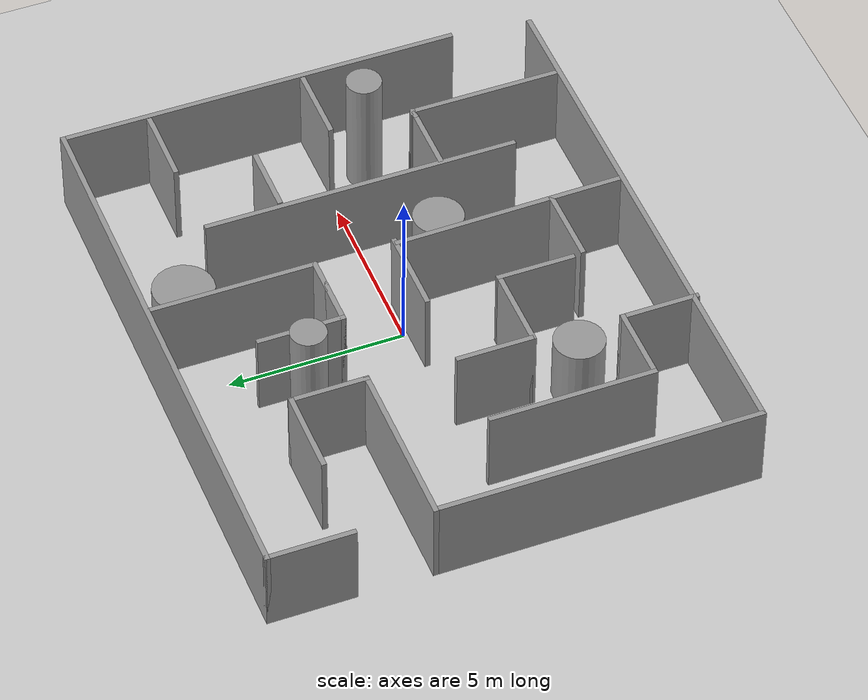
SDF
<sdf version="1.7">
 <world name="default">
  <model name="ground_plane">
   <static>1</static>
   <link name="link">
    <collision name="collision">
     <geometry><plane><normal>0 0 1</normal><size>100 100</size></plane></geometry>
     <surface>
      <contact><collide_bitmask>65535</collide_bitmask></contact>
      <friction><ode><mu>100</mu><mu2>50</mu2></ode></friction>
     </surface>
    </collision>
    <visual name="visual">
     <cast_shadows>0</cast_shadows>
     <geometry><plane><normal>0 0 1</normal><size>100 100</size></plane></geometry>
     <material>
      <script><uri>file://media/materials/scripts/gazebo.material</uri><name>Gazebo/Grey</name></script>
     </material>
    </visual>
   </link>
  </model>
  <light name="sun" type="directional">
   <pose>0 0 10 0 -0 0</pose>
   <diffuse>0.8 0.8 0.8 1</diffuse>
   <specular>0.2 0.2 0.2 1</specular>
   <attenuation>
    <range>1000</range>
    <constant>0.9</constant>
    <linear>0.01</linear>
    <quadratic>0.001</quadratic>
   </attenuation>
   <direction>-0.5 0.1 -0.9</direction>
   <spot><inner_angle>0</inner_angle><outer_angle>0</outer_angle><falloff>0</falloff></spot>
  </light>
  <gravity>0 0 -9.8</gravity>
  <magnetic_field>6e-06 2.3e-05 -4.2e-05</magnetic_field>
  <atmosphere type="adiabatic"/>
  <physics type="ode">
   <max_step_size>0.001</max_step_size>
   <real_time_factor>1</real_time_factor>
   <real_time_update_rate>1000</real_time_update_rate>
  </physics>
  <scene><ambient>0.4 0.4 0.4 1</ambient><background>0.7 0.7 0.7 1</background><shadows>1</shadows></scene>
  <spherical_coordinates>
   <surface_model>EARTH_WGS84</surface_model>
   <latitude_deg>0</latitude_deg>
   <longitude_deg>0</longitude_deg>
   <elevation>0</elevation>
   <heading_deg>0</heading_deg>
  </spherical_coordinates>
  <model name="trial_maze_1">
   <pose>-0.017353 -0.028141 0 0 -0 0</pose>
   <link name="Wall_20">
    <collision name="Wall_20_Collision">
     <geometry><box><size>2.5 0.15 2.5</size></box></geometry>
     <pose>0 0 1.25 0 -0 0</pose>
    </collision>
    <visual name="Wall_20_Visual">
     <pose>0 0 1.25 0 -0 0</pose>
     <geometry><box><size>2.5 0.15 2.5</size></box></geometry>
     <material>
      <script><uri>file://media/materials/scripts/gazebo.material</uri><name>Gazebo/Grey</name></script>
      <ambient>1 1 1 1</ambient>
     </material>
     <meta><layer>0</layer></meta>
    </visual>
    <pose>-8.02592 5.68619 0 0 -0 1.5708</pose>
   </link>
   <link name="Wall_21">
    <collision name="Wall_21_Collision">
     <geometry><box><size>16.25 0.15 2.5</size></box></geometry>
     <pose>0 0 1.25 0 -0 0</pose>
    </collision>
    <visual name="Wall_21_Visual">
     <pose>0 0 1.25 0 -0 0</pose>
     <geometry><box><size>16.25 0.15 2.5</size></box></geometry>
     <material>
      <script><uri>file://media/materials/scripts/gazebo.material</uri><name>Gazebo/Grey</name></script>
      <ambient>1 1 1 1</ambient>
     </material>
     <meta><layer>0</layer></meta>
    </visual>
    <pose>0.024078 6.86119 0 0 -0 0</pose>
   </link>
   <link name="Wall_22">
    <collision name="Wall_22_Collision">
     <geometry><box><size>11.5 0.15 2.5</size></box></geometry>
     <pose>0 0 1.25 0 -0 0</pose>
    </collision>
    <visual name="Wall_22_Visual">
     <pose>0 0 1.25 0 -0 0</pose>
     <geometry><box><size>11.5 0.15 2.5</size></box></geometry>
     <material>
      <script><uri>file://media/materials/scripts/gazebo.material</uri><name>Gazebo/Grey</name></script>
      <ambient>1 1 1 1</ambient>
     </material>
     <meta><layer>0</layer></meta>
    </visual>
    <pose>8.07408 1.18619 0 0 -0 -1.5708</pose>
   </link>
   <link name="Wall_24">
    <collision name="Wall_24_Collision">
     <geometry><box><size>2.5 0.15 2.5</size></box></geometry>
     <pose>0 0 1.25 0 -0 0</pose>
    </collision>
    <visual name="Wall_24_Visual">
     <pose>0 0 1.25 0 -0 0</pose>
     <geometry><box><size>2.5 0.15 2.5</size></box></geometry>
     <material>
      <script><uri>file://media/materials/scripts/gazebo.material</uri><name>Gazebo/Grey</name></script>
      <ambient>1 1 1 1</ambient>
     </material>
     <meta><layer>0</layer></meta>
    </visual>
    <pose>-4.39908 4.41867 0 0 -0 0</pose>
   </link>
   <link name="Wall_25">
    <collision name="Wall_25_Collision">
     <geometry><box><size>2.25 0.15 2.5</size></box></geometry>
     <pose>0 0 1.25 0 -0 0</pose>
    </collision>
    <visual name="Wall_25_Visual">
     <pose>0 0 1.25 0 -0 0</pose>
     <geometry><box><size>2.25 0.15 2.5</size></box></geometry>
     <material>
      <script><uri>file://media/materials/scripts/gazebo.material</uri><name>Gazebo/Grey</name></script>
      <ambient>1 1 1 1</ambient>
     </material>
     <meta><layer>0</layer></meta>
    </visual>
    <pose>-3.22408 3.36867 0 0 -0 -1.5708</pose>
   </link>
   <link name="Wall_26">
    <collision name="Wall_26_Collision">
     <geometry><box><size>5 0.15 2.5</size></box></geometry>
     <pose>0 0 1.25 0 -0 0</pose>
    </collision>
    <visual name="Wall_26_Visual">
     <pose>0 0 1.25 0 -0 0</pose>
     <geometry><box><size>5 0.15 2.5</size></box></geometry>
     <material>
      <script><uri>file://media/materials/scripts/gazebo.material</uri><name>Gazebo/Grey</name></script>
      <ambient>1 1 1 1</ambient>
     </material>
     <meta><layer>0</layer></meta>
    </visual>
    <pose>-5.64908 2.31867 0 0 -0 3.14159</pose>
   </link>
   <link name="Wall_27">
    <collision name="Wall_27_Collision">
     <geometry><box><size>9.25 0.15 2.5</size></box></geometry>
     <pose>0 0 1.25 0 -0 0</pose>
    </collision>
    <visual name="Wall_27_Visual">
     <pose>0 0 1.25 0 -0 0</pose>
     <geometry><box><size>9.25 0.15 2.5</size></box></geometry>
     <material>
      <script><uri>file://media/materials/scripts/gazebo.material</uri><name>Gazebo/Grey</name></script>
      <ambient>1 1 1 1</ambient>
     </material>
     <meta><layer>0</layer></meta>
    </visual>
    <pose>-8.07408 -2.23133 0 0 -0 -1.5708</pose>
   </link>
   <link name="Wall_28">
    <collision name="Wall_28_Collision">
     <geometry><box><size>16 0.15 2.5</size></box></geometry>
     <pose>0 0 1.25 0 -0 0</pose>
    </collision>
    <visual name="Wall_28_Visual">
     <pose>0 0 1.25 0 -0 0</pose>
     <geometry><box><size>16 0.15 2.5</size></box></geometry>
     <material>
      <script><uri>file://media/materials/scripts/gazebo.material</uri><name>Gazebo/Grey</name></script>
      <ambient>1 1 1 1</ambient>
     </material>
     <meta><layer>0</layer></meta>
    </visual>
    <pose>-0.149078 -6.78133 0 0 -0 0</pose>
   </link>
   <link name="Wall_30">
    <collision name="Wall_30_Collision">
     <geometry><box><size>4.75 0.15 2.5</size></box></geometry>
     <pose>0 0 1.25 0 -0 0</pose>
    </collision>
    <visual name="Wall_30_Visual">
     <pose>0 0 1.25 0 -0 0</pose>
     <geometry><box><size>4.75 0.15 2.5</size></box></geometry>
     <material>
      <script><uri>file://media/materials/scripts/gazebo.material</uri><name>Gazebo/Grey</name></script>
      <ambient>1 1 1 1</ambient>
     </material>
     <meta><layer>0</layer></meta>
    </visual>
    <pose>1.1338 4.43173 0 0 -0 -1.5708</pose>
   </link>
   <link name="Wall_31">
    <collision name="Wall_31_Collision">
     <geometry><box><size>2.25 0.15 2.5</size></box></geometry>
     <pose>0 0 1.25 0 -0 0</pose>
    </collision>
    <visual name="Wall_31_Visual">
     <pose>0 0 1.25 0 -0 0</pose>
     <geometry><box><size>2.25 0.15 2.5</size></box></geometry>
     <material>
      <script><uri>file://media/materials/scripts/gazebo.material</uri><name>Gazebo/Grey</name></script>
      <ambient>1 1 1 1</ambient>
     </material>
     <meta><layer>0</layer></meta>
    </visual>
    <pose>0.083798 2.13173 0 0 -0 3.14159</pose>
   </link>
   <link name="Wall_32">
    <collision name="Wall_32_Collision">
     <geometry><box><size>2.5 0.15 2.5</size></box></geometry>
     <pose>0 0 1.25 0 -0 0</pose>
    </collision>
    <visual name="Wall_32_Visual">
     <pose>0 0 1.25 0 -0 0</pose>
     <geometry><box><size>2.5 0.15 2.5</size></box></geometry>
     <material>
      <script><uri>file://media/materials/scripts/gazebo.material</uri><name>Gazebo/Grey</name></script>
      <ambient>1 1 1 1</ambient>
     </material>
     <meta><layer>0</layer></meta>
    </visual>
    <pose>-0.966202 3.30673 0 0 -0 1.5708</pose>
   </link>
   <link name="Wall_34">
    <collision name="Wall_34_Collision">
     <geometry><box><size>4.75 0.15 2.5</size></box></geometry>
     <pose>0 0 1.25 0 -0 0</pose>
    </collision>
    <visual name="Wall_34_Visual">
     <pose>0 0 1.25 0 -0 0</pose>
     <geometry><box><size>4.75 0.15 2.5</size></box></geometry>
     <material>
      <script><uri>file://media/materials/scripts/gazebo.material</uri><name>Gazebo/Grey</name></script>
      <ambient>1 1 1 1</ambient>
     </material>
     <meta><layer>0</layer></meta>
    </visual>
    <pose>-5.71286 -2.46119 0 0 -0 -1.5708</pose>
   </link>
   <link name="Wall_35">
    <collision name="Wall_35_Collision">
     <geometry><box><size>2.25 0.15 2.5</size></box></geometry>
     <pose>0 0 1.25 0 -0 0</pose>
    </collision>
    <visual name="Wall_35_Visual">
     <pose>0 0 1.25 0 -0 0</pose>
     <geometry><box><size>2.25 0.15 2.5</size></box></geometry>
     <material>
      <script><uri>file://media/materials/scripts/gazebo.material</uri><name>Gazebo/Grey</name></script>
      <ambient>1 1 1 1</ambient>
     </material>
     <meta><layer>0</layer></meta>
    </visual>
    <pose>-4.66286 -4.76119 0 0 -0 0</pose>
   </link>
   <link name="Wall_36">
    <collision name="Wall_36_Collision">
     <geometry><box><size>2.25 0.15 2.5</size></box></geometry>
     <pose>0 0 1.25 0 -0 0</pose>
    </collision>
    <visual name="Wall_36_Visual">
     <pose>0 0 1.25 0 -0 0</pose>
     <geometry><box><size>2.25 0.15 2.5</size></box></geometry>
     <material>
      <script><uri>file://media/materials/scripts/gazebo.material</uri><name>Gazebo/Grey</name></script>
      <ambient>1 1 1 1</ambient>
     </material>
     <meta><layer>0</layer></meta>
    </visual>
    <pose>-3.61286 -5.81119 0 0 -0 -1.5708</pose>
   </link>
   <link name="Wall_38">
    <collision name="Wall_38_Collision">
     <geometry><box><size>2.5 0.15 2.5</size></box></geometry>
     <pose>0 0 1.25 0 -0 0</pose>
    </collision>
    <visual name="Wall_38_Visual">
     <pose>0 0 1.25 0 -0 0</pose>
     <geometry><box><size>2.5 0.15 2.5</size></box></geometry>
     <material>
      <script><uri>file://media/materials/scripts/gazebo.material</uri><name>Gazebo/Grey</name></script>
      <ambient>1 1 1 1</ambient>
     </material>
     <meta><layer>0</layer></meta>
    </visual>
    <pose>-0.004263 -0.161192 0 0 -0 0</pose>
   </link>
   <link name="Wall_39">
    <collision name="Wall_39_Collision">
     <geometry><box><size>6.70439 0.15 2.5</size></box></geometry>
     <pose>0 0 1.25 0 -0 0</pose>
    </collision>
    <visual name="Wall_39_Visual">
     <pose>0 0 1.25 0 -0 0</pose>
     <geometry><box><size>6.70439 0.15 2.5</size></box></geometry>
     <material>
      <script><uri>file://media/materials/scripts/gazebo.material</uri><name>Gazebo/Grey</name></script>
      <ambient>1 1 1 1</ambient>
     </material>
     <meta><layer>0</layer></meta>
    </visual>
    <pose>1.12448 -3.48432 0 0 -0 -1.55668</pose>
   </link>
   <link name="Wall_41">
    <collision name="Wall_41_Collision">
     <geometry><box><size>2.25 0.15 2.5</size></box></geometry>
     <pose>0 0 1.25 0 -0 0</pose>
    </collision>
    <visual name="Wall_41_Visual">
     <pose>0 0 1.25 0 -0 0</pose>
     <geometry><box><size>2.25 0.15 2.5</size></box></geometry>
     <material>
      <script><uri>file://media/materials/scripts/gazebo.material</uri><name>Gazebo/Grey</name></script>
      <ambient>1 1 1 1</ambient>
     </material>
     <meta><layer>0</layer></meta>
    </visual>
    <pose>-3.44606 -1.21119 0 0 -0 -1.5708</pose>
   </link>
   <link name="Wall_42">
    <collision name="Wall_42_Collision">
     <geometry><box><size>2.5 0.15 2.5</size></box></geometry>
     <pose>0 0 1.25 0 -0 0</pose>
    </collision>
    <visual name="Wall_42_Visual">
     <pose>0 0 1.25 0 -0 0</pose>
     <geometry><box><size>2.5 0.15 2.5</size></box></geometry>
     <material>
      <script><uri>file://media/materials/scripts/gazebo.material</uri><name>Gazebo/Grey</name></script>
      <ambient>1 1 1 1</ambient>
     </material>
     <meta><layer>0</layer></meta>
    </visual>
    <pose>-2.27106 -2.26119 0 0 -0 0</pose>
   </link>
   <link name="Wall_43">
    <collision name="Wall_43_Collision">
     <geometry><box><size>2.25 0.15 2.5</size></box></geometry>
     <pose>0 0 1.25 0 -0 0</pose>
    </collision>
    <visual name="Wall_43_Visual">
     <pose>0 0 1.25 0 -0 0</pose>
     <geometry><box><size>2.25 0.15 2.5</size></box></geometry>
     <material>
      <script><uri>file://media/materials/scripts/gazebo.material</uri><name>Gazebo/Grey</name></script>
      <ambient>1 1 1 1</ambient>
     </material>
     <meta><layer>0</layer></meta>
    </visual>
    <pose>-1.09606 -3.31119 0 0 -0 -1.5708</pose>
   </link>
   <link name="Wall_45">
    <collision name="Wall_45_Collision">
     <geometry><box><size>2.25 0.15 2.5</size></box></geometry>
     <pose>0 0 1.25 0 -0 0</pose>
    </collision>
    <visual name="Wall_45_Visual">
     <pose>0 0 1.25 0 -0 0</pose>
     <geometry><box><size>2.25 0.15 2.5</size></box></geometry>
     <material>
      <script><uri>file://media/materials/scripts/gazebo.material</uri><name>Gazebo/Grey</name></script>
      <ambient>1 1 1 1</ambient>
     </material>
     <meta><layer>0</layer></meta>
    </visual>
    <pose>0.055782 -4.69479 0 0 -0 0</pose>
   </link>
   <link name="Wall_48">
    <collision name="Wall_48_Collision">
     <geometry><box><size>2.25 0.15 2.5</size></box></geometry>
     <pose>0 0 1.25 0 -0 0</pose>
    </collision>
    <visual name="Wall_48_Visual">
     <pose>0 0 1.25 0 -0 0</pose>
     <geometry><box><size>2.25 0.15 2.5</size></box></geometry>
     <material>
      <script><uri>file://media/materials/scripts/gazebo.material</uri><name>Gazebo/Grey</name></script>
      <ambient>1 1 1 1</ambient>
     </material>
     <meta><layer>0</layer></meta>
    </visual>
    <pose>6.85618 4.41867 0 0 -0 0</pose>
   </link>
   <link name="Wall_50">
    <collision name="Wall_50_Collision">
     <geometry><box><size>2.25 0.15 2.5</size></box></geometry>
     <pose>0 0 1.25 0 -0 0</pose>
    </collision>
    <visual name="Wall_50_Visual">
     <pose>0 0 1.25 0 -0 0</pose>
     <geometry><box><size>2.25 0.15 2.5</size></box></geometry>
     <material>
      <script><uri>file://media/materials/scripts/gazebo.material</uri><name>Gazebo/Grey</name></script>
      <ambient>1 1 1 1</ambient>
     </material>
     <meta><layer>0</layer></meta>
    </visual>
    <pose>6.85618 -0.068669 0 0 -0 0</pose>
   </link>
   <link name="Wall_52">
    <collision name="Wall_52_Collision">
     <geometry><box><size>2 0.15 2.5</size></box></geometry>
     <pose>0 0 1.25 0 -0 0</pose>
    </collision>
    <visual name="Wall_52_Visual">
     <pose>0 0 1.25 0 -0 0</pose>
     <geometry><box><size>2 0.15 2.5</size></box></geometry>
     <material>
      <script><uri>file://media/materials/scripts/gazebo.material</uri><name>Gazebo/Grey</name></script>
      <ambient>1 1 1 1</ambient>
     </material>
     <meta><layer>0</layer></meta>
    </visual>
    <pose>4.60316 2.19813 0 0 -0 0</pose>
   </link>
   <link name="Wall_54">
    <collision name="Wall_54_Collision">
     <geometry><box><size>2 0.15 2.5</size></box></geometry>
     <pose>0 0 1.25 0 -0 0</pose>
    </collision>
    <visual name="Wall_54_Visual">
     <pose>0 0 1.25 0 -0 0</pose>
     <geometry><box><size>2 0.15 2.5</size></box></geometry>
     <material>
      <script><uri>file://media/materials/scripts/gazebo.material</uri><name>Gazebo/Grey</name></script>
      <ambient>1 1 1 1</ambient>
     </material>
     <meta><layer>0</layer></meta>
    </visual>
    <pose>4.51064 -2.42799 0 0 -0 0</pose>
   </link>
   <link name="Wall_55">
    <collision name="Wall_55_Collision">
     <geometry><box><size>0.25 0.15 2.5</size></box></geometry>
     <pose>0 0 1.25 0 -0 0</pose>
    </collision>
    <visual name="Wall_55_Visual">
     <pose>0 0 1.25 0 -0 0</pose>
     <geometry><box><size>0.25 0.15 2.5</size></box></geometry>
     <material>
      <script><uri>file://media/materials/scripts/gazebo.material</uri><name>Gazebo/Grey</name></script>
      <ambient>1 1 1 1</ambient>
     </material>
     <meta><layer>0</layer></meta>
    </visual>
    <pose>5.48394 -2.41505 0 0 -0 0.261799</pose>
   </link>
   <link name="Wall_56">
    <collision name="Wall_56_Collision">
     <geometry><box><size>0.25 0.15 2.5</size></box></geometry>
     <pose>0 0 1.25 0 -0 0</pose>
    </collision>
    <visual name="Wall_56_Visual">
     <pose>0 0 1.25 0 -0 0</pose>
     <geometry><box><size>0.25 0.15 2.5</size></box></geometry>
     <material>
      <script><uri>file://media/materials/scripts/gazebo.material</uri><name>Gazebo/Grey</name></script>
      <ambient>1 1 1 1</ambient>
     </material>
     <meta><layer>0</layer></meta>
    </visual>
    <pose>5.58053 -2.41505 0 0 -0 -0.261799</pose>
   </link>
   <link name="Wall_57">
    <collision name="Wall_57_Collision">
     <geometry><box><size>4.5 0.15 2.5</size></box></geometry>
     <pose>0 0 1.25 0 -0 0</pose>
    </collision>
    <visual name="Wall_57_Visual">
     <pose>0 0 1.25 0 -0 0</pose>
     <geometry><box><size>4.5 0.15 2.5</size></box></geometry>
     <material>
      <script><uri>file://media/materials/scripts/gazebo.material</uri><name>Gazebo/Grey</name></script>
      <ambient>1 1 1 1</ambient>
     </material>
     <meta><layer>0</layer></meta>
    </visual>
    <pose>5.62883 -4.60299 0 0 -0 -1.5708</pose>
   </link>
   <link name="Wall_59">
    <collision name="Wall_59_Collision">
     <geometry><box><size>9 0.15 2.5</size></box></geometry>
     <pose>0 0 1.25 0 -0 0</pose>
    </collision>
    <visual name="Wall_59_Visual">
     <pose>0 0 1.25 0 -0 0</pose>
     <geometry><box><size>9 0.15 2.5</size></box></geometry>
     <material>
      <script><uri>file://media/materials/scripts/gazebo.material</uri><name>Gazebo/Grey</name></script>
      <ambient>1 1 1 1</ambient>
     </material>
     <meta><layer>0</layer></meta>
    </visual>
    <pose>3.49312 -0.098854 0 0 -0 -1.5708</pose>
   </link>
   <link name="Wall_61">
    <collision name="Wall_61_Collision">
     <geometry><box><size>2.25 0.15 2.5</size></box></geometry>
     <pose>0 0 1.25 0 -0 0</pose>
    </collision>
    <visual name="Wall_61_Visual">
     <pose>0 0 1.25 0 -0 0</pose>
     <geometry><box><size>2.25 0.15 2.5</size></box></geometry>
     <material>
      <script><uri>file://media/materials/scripts/gazebo.material</uri><name>Gazebo/Grey</name></script>
      <ambient>1 1 1 1</ambient>
     </material>
     <meta><layer>0</layer></meta>
    </visual>
    <pose>0.083798 2.13173 0 0 -0 0</pose>
   </link>
   <static>1</static>
  </model>
  <model name="long_cylinder">
   <link name="link_5">
    <inertial>
     <mass>3.60259</mass>
     <inertia><ixx>4.12154</ixx><ixy>0</ixy><ixz>0</ixz><iyy>4.12154</iyy><iyz>0</iyz><izz>0.450323</izz></inertia>
    </inertial>
    <pose>0 -2e-06 0 0 -0 0</pose>
    <visual name="visual">
     <geometry><cylinder><radius>0.5</radius><length>3.60259</length></cylinder></geometry>
     <material>
      <lighting>1</lighting>
      <script><uri>file://media/materials/scripts/gazebo.material</uri><name>Gazebo/Grey</name></script>
      <shader type="pixel"/>
      <emissive>0 0 0 1</emissive>
     </material>
    </visual>
    <collision name="collision">
     <geometry><cylinder><radius>0.5</radius><length>3.60258</length></cylinder></geometry>
     <surface>
      <friction>
       <ode><mu>1</mu><mu2>1</mu2><fdir1>0 0 0</fdir1><slip1>0</slip1><slip2>0</slip2></ode>
       <torsional>
        <coefficient>1</coefficient>
        <patch_radius>0</patch_radius>
        <surface_radius>0</surface_radius>
        <use_patch_radius>1</use_patch_radius>
        <ode><slip>0</slip></ode>
       </torsional>
      </friction>
      <bounce><restitution_coefficient>0</restitution_coefficient><threshold>1e+06</threshold></bounce>
      <contact>
       <collide_without_contact>0</collide_without_contact>
       <collide_without_contact_bitmask>1</collide_without_contact_bitmask>
       <collide_bitmask>1</collide_bitmask>
       <ode>
        <soft_cfm>0</soft_cfm>
        <soft_erp>0.2</soft_erp>
        <kp>1e+13</kp>
        <kd>1</kd>
        <max_vel>0.01</max_vel>
        <min_depth>0</min_depth>
       </ode>
       <bullet>
        <split_impulse>1</split_impulse>
        <split_impulse_penetration_threshold>-0.01</split_impulse_penetration_threshold>
        <soft_cfm>0</soft_cfm>
        <soft_erp>0.2</soft_erp>
        <kp>1e+13</kp>
        <kd>1</kd>
       </bullet>
      </contact>
     </surface>
    </collision>
   </link>
   <static>0</static>
   <pose>-2.11695 3.47883 1.79541 0 -0 0</pose>
  </model>
  <model name="big_cylinder">
   <link name="link_6">
    <inertial>
     <mass>5.40188</mass>
     <inertia><ixx>2.45932</ixx><ixy>0</ixy><ixz>0</ixz><iyy>2.45932</iyy><iyz>0</iyz><izz>2.03968</izz></inertia>
    </inertial>
    <pose>3e-06 3e-06 0 0 -0 0</pose>
    <visual name="visual">
     <geometry><cylinder><radius>0.869008</radius><length>1.78822</length></cylinder></geometry>
     <material>
      <lighting>1</lighting>
      <script><uri>file://media/materials/scripts/gazebo.material</uri><name>Gazebo/Grey</name></script>
      <shader type="pixel"/>
     </material>
    </visual>
    <collision name="collision">
     <geometry><cylinder><radius>0.869008</radius><length>1.78822</length></cylinder></geometry>
     <surface>
      <friction>
       <ode><mu>1</mu><mu2>1</mu2><fdir1>0 0 0</fdir1><slip1>0</slip1><slip2>0</slip2></ode>
       <torsional>
        <coefficient>1</coefficient>
        <patch_radius>0</patch_radius>
        <surface_radius>0</surface_radius>
        <use_patch_radius>1</use_patch_radius>
        <ode><slip>0</slip></ode>
       </torsional>
      </friction>
      <bounce><restitution_coefficient>0</restitution_coefficient><threshold>1e+06</threshold></bounce>
      <contact>
       <collide_without_contact>0</collide_without_contact>
       <collide_without_contact_bitmask>1</collide_without_contact_bitmask>
       <collide_bitmask>1</collide_bitmask>
       <ode>
        <soft_cfm>0</soft_cfm>
        <soft_erp>0.2</soft_erp>
        <kp>1e+13</kp>
        <kd>1</kd>
        <max_vel>0.01</max_vel>
        <min_depth>0</min_depth>
       </ode>
       <bullet>
        <split_impulse>1</split_impulse>
        <split_impulse_penetration_threshold>-0.01</split_impulse_penetration_threshold>
        <soft_cfm>0</soft_cfm>
        <soft_erp>0.2</soft_erp>
        <kp>1e+13</kp>
        <kd>1</kd>
       </bullet>
      </contact>
     </surface>
    </collision>
   </link>
   <static>0</static>
   <pose>2.55367 5.34149 0.5 0 -0 0</pose>
  </model>
  <model name="medium_cylinder">
   <link name="link_7">
    <inertial>
     <mass>5.8515</mass>
     <inertia><ixx>4.76268</ixx><ixy>0</ixy><ixz>0</ixz><iyy>4.76268</iyy><iyz>0</iyz><izz>1.49119</izz></inertia>
    </inertial>
    <pose>-1e-06 1e-06 0 0 -0 0</pose>
    <visual name="visual">
     <geometry><cylinder><radius>0.713918</radius><length>2.8702</length></cylinder></geometry>
     <material>
      <lighting>1</lighting>
      <script><uri>file://media/materials/scripts/gazebo.material</uri><name>Gazebo/Grey</name></script>
      <shader type="pixel"/>
     </material>
    </visual>
    <collision name="collision">
     <geometry><cylinder><radius>0.713918</radius><length>2.8702</length></cylinder></geometry>
     <surface>
      <friction>
       <ode><mu>1</mu><mu2>1</mu2><fdir1>0 0 0</fdir1><slip1>0</slip1><slip2>0</slip2></ode>
       <torsional>
        <coefficient>1</coefficient>
        <patch_radius>0</patch_radius>
        <surface_radius>0</surface_radius>
        <use_patch_radius>1</use_patch_radius>
        <ode><slip>0</slip></ode>
       </torsional>
      </friction>
      <bounce><restitution_coefficient>0</restitution_coefficient><threshold>1e+06</threshold></bounce>
      <contact>
       <collide_without_contact>0</collide_without_contact>
       <collide_without_contact_bitmask>1</collide_without_contact_bitmask>
       <collide_bitmask>1</collide_bitmask>
       <ode>
        <soft_cfm>0</soft_cfm>
        <soft_erp>0.2</soft_erp>
        <kp>1e+13</kp>
        <kd>1</kd>
        <max_vel>0.01</max_vel>
        <min_depth>0</min_depth>
       </ode>
       <bullet>
        <split_impulse>1</split_impulse>
        <split_impulse_penetration_threshold>-0.01</split_impulse_penetration_threshold>
        <soft_cfm>0</soft_cfm>
        <soft_erp>0.2</soft_erp>
        <kp>1e+13</kp>
        <kd>1</kd>
       </bullet>
      </contact>
     </surface>
    </collision>
   </link>
   <static>0</static>
   <pose>-3.5005 -3.60821 0.5 0 -0 0</pose>
  </model>
  <model name="medium_cylinder_clone">
   <link name="link_7">
    <inertial>
     <mass>5.8515</mass>
     <inertia><ixx>4.76268</ixx><ixy>0</ixy><ixz>0</ixz><iyy>4.76268</iyy><iyz>0</iyz><izz>1.49119</izz></inertia>
    </inertial>
    <pose>-1e-06 1e-06 0 0 -0 0</pose>
    <visual name="visual">
     <geometry><cylinder><radius>0.713918</radius><length>2.8702</length></cylinder></geometry>
     <material>
      <lighting>1</lighting>
      <script><uri>file://media/materials/scripts/gazebo.material</uri><name>Gazebo/Grey</name></script>
      <shader type="pixel"/>
     </material>
    </visual>
    <collision name="collision">
     <geometry><cylinder><radius>0.713918</radius><length>2.8702</length></cylinder></geometry>
     <surface>
      <friction>
       <ode><mu>1</mu><mu2>1</mu2><fdir1>0 0 0</fdir1><slip1>0</slip1><slip2>0</slip2></ode>
       <torsional>
        <coefficient>1</coefficient>
        <patch_radius>0</patch_radius>
        <surface_radius>0</surface_radius>
        <use_patch_radius>1</use_patch_radius>
        <ode><slip>0</slip></ode>
       </torsional>
      </friction>
      <bounce><restitution_coefficient>0</restitution_coefficient><threshold>1e+06</threshold></bounce>
      <contact>
       <collide_without_contact>0</collide_without_contact>
       <collide_without_contact_bitmask>1</collide_without_contact_bitmask>
       <collide_bitmask>1</collide_bitmask>
       <ode>
        <soft_cfm>0</soft_cfm>
        <soft_erp>0.2</soft_erp>
        <kp>1e+13</kp>
        <kd>1</kd>
        <max_vel>0.01</max_vel>
        <min_depth>0</min_depth>
       </ode>
       <bullet>
        <split_impulse>1</split_impulse>
        <split_impulse_penetration_threshold>-0.01</split_impulse_penetration_threshold>
        <soft_cfm>0</soft_cfm>
        <soft_erp>0.2</soft_erp>
        <kp>1e+13</kp>
        <kd>1</kd>
       </bullet>
      </contact>
     </surface>
    </collision>
   </link>
   <static>0</static>
   <pose>2.13839 -1.84328 0.5 0 -0 0</pose>
  </model>
  <model name="long_cylinder_clone">
   <link name="link_5">
    <inertial>
     <mass>3.60259</mass>
     <inertia><ixx>4.12154</ixx><ixy>0</ixy><ixz>0</ixz><iyy>4.12154</iyy><iyz>0</iyz><izz>0.450323</izz></inertia>
    </inertial>
    <pose>0 -2e-06 0 0 -0 0</pose>
    <visual name="visual">
     <geometry><cylinder><radius>0.5</radius><length>3.60259</length></cylinder></geometry>
     <material>
      <lighting>1</lighting>
      <script><uri>file://media/materials/scripts/gazebo.material</uri><name>Gazebo/Grey</name></script>
      <shader type="pixel"/>
      <emissive>0 0 0 1</emissive>
     </material>
    </visual>
    <collision name="collision">
     <geometry><cylinder><radius>0.5</radius><length>3.60258</length></cylinder></geometry>
     <surface>
      <friction>
       <ode><mu>1</mu><mu2>1</mu2><fdir1>0 0 0</fdir1><slip1>0</slip1><slip2>0</slip2></ode>
       <torsional>
        <coefficient>1</coefficient>
        <patch_radius>0</patch_radius>
        <surface_radius>0</surface_radius>
        <use_patch_radius>1</use_patch_radius>
        <ode><slip>0</slip></ode>
       </torsional>
      </friction>
      <bounce><restitution_coefficient>0</restitution_coefficient><threshold>1e+06</threshold></bounce>
      <contact>
       <collide_without_contact>0</collide_without_contact>
       <collide_without_contact_bitmask>1</collide_without_contact_bitmask>
       <collide_bitmask>1</collide_bitmask>
       <ode>
        <soft_cfm>0</soft_cfm>
        <soft_erp>0.2</soft_erp>
        <kp>1e+13</kp>
        <kd>1</kd>
        <max_vel>0.01</max_vel>
        <min_depth>0</min_depth>
       </ode>
       <bullet>
        <split_impulse>1</split_impulse>
        <split_impulse_penetration_threshold>-0.01</split_impulse_penetration_threshold>
        <soft_cfm>0</soft_cfm>
        <soft_erp>0.2</soft_erp>
        <kp>1e+13</kp>
        <kd>1</kd>
       </bullet>
      </contact>
     </surface>
    </collision>
   </link>
   <static>0</static>
   <pose>6.131 -1.22099 1.79541 0 -0 0</pose>
  </model>
 </world>
</sdf>
